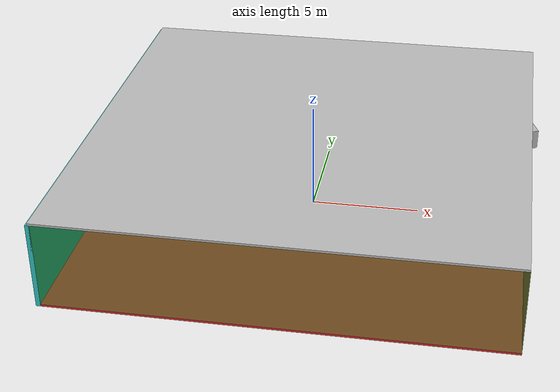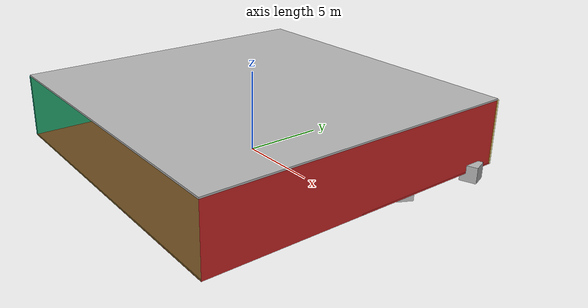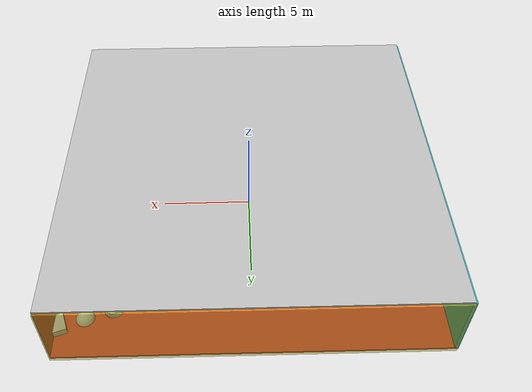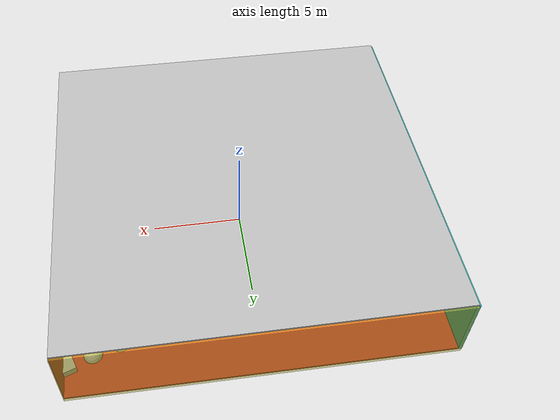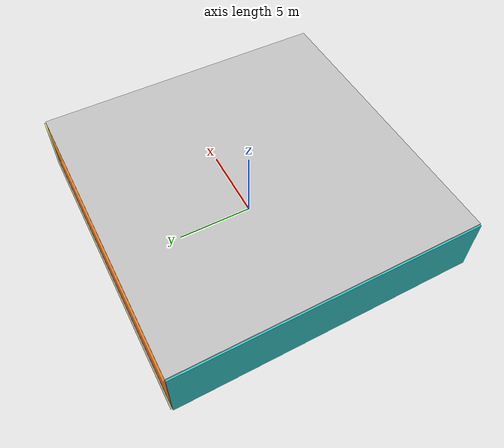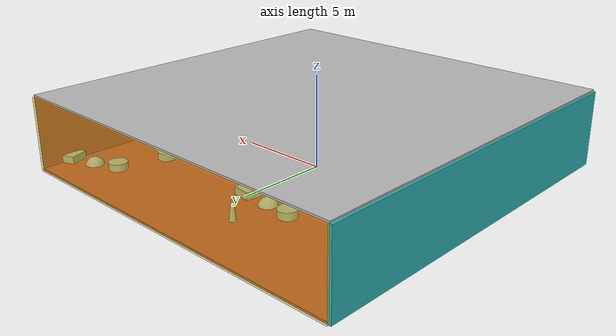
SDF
<sdf version="1.4">
 <world name="default">
  <physics type="ode">
   <max_step_size>0.001</max_step_size>
   <real_time_factor>1</real_time_factor>
   <real_time_update_rate>1000</real_time_update_rate>
   <gravity>0 0 -9.8</gravity>
  </physics>
  <scene><ambient>0.4 0.4 0.4 1</ambient><background>0.7 0.7 0.7 1</background><shadows>1</shadows></scene>
  <model name="Surrounding">
   <static>1</static>
   <link name="Ceiling">
    <collision name="Ceiling_Collision"><geometry><box><size>20 20 0.1</size></box></geometry></collision>
    <visual name="Ceiling_Visual">
     <geometry><box><size>20 20 0.1</size></box></geometry>
     <material>
      <script><uri>file://media/materials/scripts/gazebo.material</uri><name>Gazebo/PioneerBody</name></script>
     </material>
    </visual>
    <pose>0 0 4.05 0 0 0</pose>
   </link>
   <link name="Wall_South">
    <collision name="Wall_South_Collision">
     <geometry><box><size>20 0 4</size></box></geometry>
     <pose>0 0 2 0 -0 0</pose>
    </collision>
    <visual name="Wall_South_Visual">
     <pose>0 0 2 0 -0 0</pose>
     <geometry><box><size>20 0 4</size></box></geometry>
     <material>
      <script><uri>file://media/materials/scripts/gazebo.material</uri><name>Gazebo/GreenTransparent</name></script>
     </material>
    </visual>
    <velocity_decay><linear>0</linear><angular>0</angular></velocity_decay>
    <pose>0 -10 0 0 -0 0</pose>
   </link>
   <link name="Wall_East">
    <collision name="Wall_21_Collision">
     <geometry><box><size>20 0 4</size></box></geometry>
     <pose>0 0 2 0 -0 0</pose>
    </collision>
    <visual name="Wall_21_Visual">
     <pose>0 0 2 0 -0 0</pose>
     <geometry><box><size>20 0 4</size></box></geometry>
     <material>
      <script><uri>file://media/materials/scripts/gazebo.material</uri><name>Gazebo/RedBright</name></script>
     </material>
    </visual>
    <velocity_decay><linear>0</linear><angular>0</angular></velocity_decay>
    <pose>10 0 0 0 -0 1.5708</pose>
   </link>
   <link name="Wall_North">
    <collision name="Wall_22_Collision">
     <geometry><box><size>20 0.2 4</size></box></geometry>
     <pose>0 0 2 0 -0 0</pose>
    </collision>
    <visual name="Wall_22_Visual">
     <pose>0 0 2 0 -0 0</pose>
     <geometry><box><size>20 0.2 4</size></box></geometry>
     <material>
      <script>
       <uri>file://media/materials/scripts/gazebo.material</uri>
       <name>Gazebo/YellowTransparent</name>
      </script>
     </material>
    </visual>
    <velocity_decay><linear>0</linear><angular>0</angular></velocity_decay>
    <pose>0 10 0 0 -0 0</pose>
   </link>
   <link name="Wall_West">
    <collision name="Wall_23_Collision">
     <geometry><box><size>20 0.2 4</size></box></geometry>
     <pose>0 0 2 0 -0 0</pose>
    </collision>
    <visual name="Wall_23_Visual">
     <pose>0 0 2 0 -0 0</pose>
     <geometry><box><size>20 0.2 4</size></box></geometry>
     <material>
      <script><uri>file://media/materials/scripts/gazebo.material</uri><name>Gazebo/Turquoise</name></script>
     </material>
    </visual>
    <velocity_decay><linear>0</linear><angular>0</angular></velocity_decay>
    <pose>-10 0 0 0 0 -1.5708</pose>
   </link>
   <link name="Ground_link">
    <collision name="collision">
     <pose>0 0 .05 0 -0 0</pose>
     <geometry><box><size>20 20 0.1</size></box></geometry>
    </collision>
    <visual name="visual">
     <pose>0 0 .05 0 -0 0</pose>
     <geometry><box><size>20 20 0.1</size></box></geometry>
     <material>
      <script><uri>file://media/materials/scripts/gazebo.material</uri><name>Gazebo/RedBright</name></script>
     </material>
    </visual>
   </link>
   <static>1</static>
  </model>
  <spherical_coordinates>
   <surface_model>EARTH_WGS84</surface_model>
   <latitude_deg>0</latitude_deg>
   <longitude_deg>0</longitude_deg>
   <elevation>0</elevation>
   <heading_deg>0</heading_deg>
  </spherical_coordinates>
  <light name="lightball_0" type="diffuse">
   <diffuse>0.8 0.8 0.8 1</diffuse>
   <specular>0.2 0.2 0.2 1</specular>
   <attenuation>
    <range>100</range>
    <constant>0.7</constant>
    <linear>0.01</linear>
    <quadratic>0.001</quadratic>
   </attenuation>
   <direction>-0.5 0.1 -0.9</direction>
   <pose>-8.76898523397 8.65811178365 1.43250281898 0 0 0</pose>
  </light>
  <light name="lightball_1" type="diffuse">
   <diffuse>0.8 0.8 0.8 1</diffuse>
   <specular>0.2 0.2 0.2 1</specular>
   <attenuation>
    <range>100</range>
    <constant>0.7</constant>
    <linear>0.01</linear>
    <quadratic>0.001</quadratic>
   </attenuation>
   <direction>-0.5 0.1 -0.9</direction>
   <pose>8.87594942733 -8.39831237628 2.22974921563 0 0 0</pose>
  </light>
  <include>
   <uri>model://textured_shapes</uri>
   <pose>-1.59849814935 5.00764780233 0 0 0 1.44344542357</pose>
  </include>
  <include>
   <uri>model://construction_cone</uri>
   <pose>-1.60008857604 7.16809925789 0 0 0 1.25923667967</pose>
  </include>
  <include>
   <uri>model://textured_shapes</uri>
   <pose>1.61392958831 -1.19610802331 0 0 0 0.397941678602</pose>
  </include>
  <include>
   <uri>model://textured_shapes</uri>
   <pose>7.8364466306 4.08550589442 0 0 0 1.11778905148</pose>
  </include>
  <include>
   <uri>model://textured_shapes</uri>
   <pose>8.56613253827 7.85047634376 0 0 0 1.9110307341</pose>
  </include>
 </world>
</sdf>

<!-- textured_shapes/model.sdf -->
<sdf version="1.6">
  <model name="textured_shapes">
    <pose>0 0 0.5 0 0 0</pose>
    <link name="box">
      <pose>0 -1.5 0 0 0 0</pose>
      <collision name="collision">
        <geometry>
          <box>
            <size>1 1 1</size>
          </box>
        </geometry>
      </collision>
      <visual name="visual">
        <geometry>
          <box>
            <size>1 1 1</size>
          </box>
        </geometry>
        <material>
          <script>
            <uri>model://../model_source/models/textured_shapes/materials/scripts</uri>
            <uri>model://../model_source/models/textured_shapes/materials/textures</uri>
            <name>TexturedShape/Squares</name>
          </script>
        </material>
      </visual>
    </link>
    <link name="sphere">
      <collision name="collision">
        <geometry>
          <sphere>
            <radius>0.5</radius>
          </sphere>
        </geometry>
      </collision>
      <visual name="visual">
        <geometry>
          <sphere>
            <radius>0.5</radius>
          </sphere>
        </geometry>
        <material>
          <script>
            <uri>model://../model_source/models/textured_shapes/materials/scripts</uri>
            <uri>model://../model_source/models/textured_shapes/materials/textures</uri>
            <name>TexturedShape/Squares</name>
          </script>
        </material>
      </visual>
    </link>
    <link name="cylinder">
      <pose>0 1.5 0 0 0 0</pose>
      <collision name="collision">
        <geometry>
          <cylinder>
            <radius>0.5</radius>
            <length>1</length>
          </cylinder>
        </geometry>
      </collision>
      <visual name="visual">
        <geometry>
          <cylinder>
            <radius>0.5</radius>
            <length>1</length>
          </cylinder>
        </geometry>
        <material>
          <script>
            <uri>model://../model_source/models/textured_shapes/materials/scripts</uri>
            <uri>model://../model_source/models/textured_shapes/materials/textures</uri>
            <name>TexturedShape/Squares</name>
          </script>
        </material>
      </visual>
    </link>
  </model>
</sdf>

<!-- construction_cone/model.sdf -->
<sdf version="1.5">
  <model name="Construction Cone">
    <link name="link">
      <collision name="collision">
        <geometry>
          <mesh>
            <scale>10 10 10</scale>
            <uri>file://isr-testbed/construction_cone/meshes/construction_cone.dae</uri>
          </mesh>
        </geometry>
      </collision>
      <visual name="visual">
        <geometry>
          <mesh>
            <scale>10 10 10</scale>
            <uri>file://isr-testbed/construction_cone/meshes/construction_cone.dae</uri>
          </mesh>
        </geometry>
      </visual>
    </link>
  </model>
</sdf>
